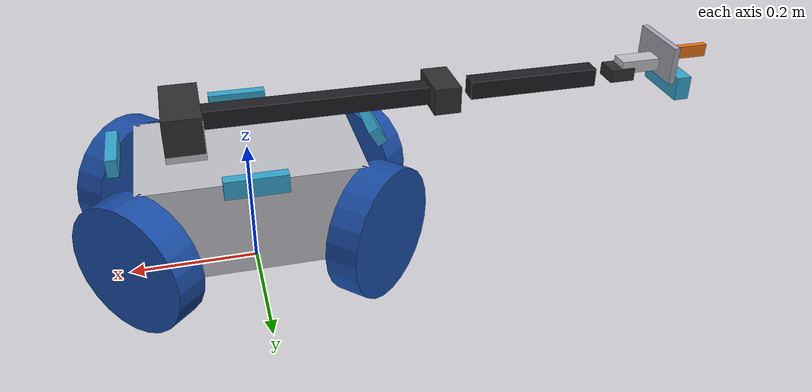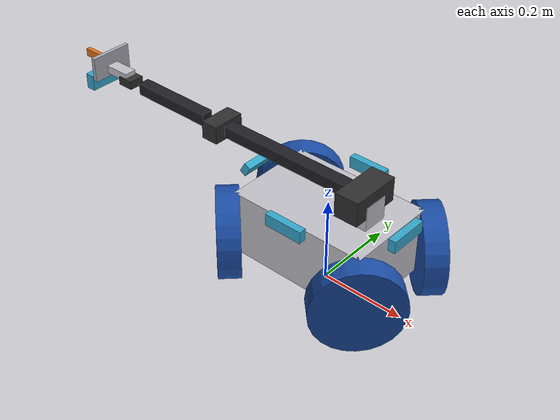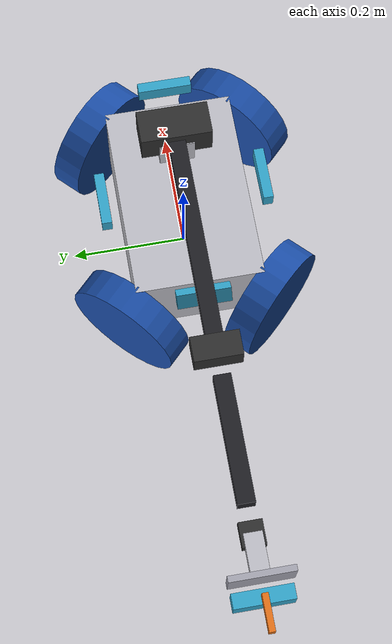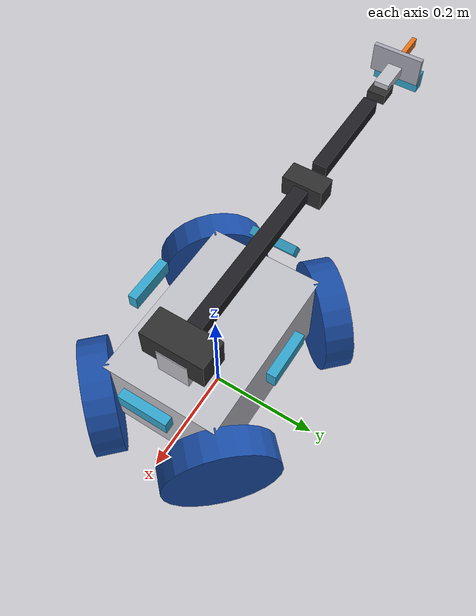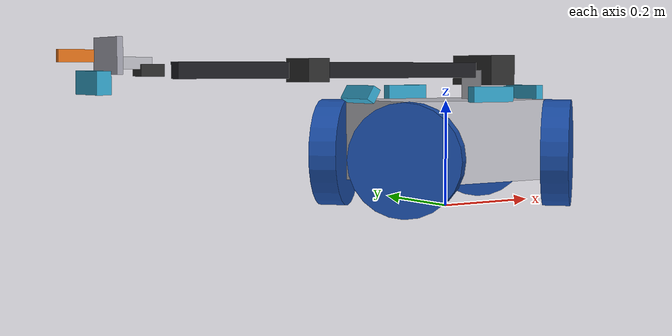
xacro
<?xml version="1.0"?>
<robot xmlns:xacro="http://www.ros.org/wiki/xacro" name="fortis">

  <xacro:arg name="enable_ros2_control" default="false"/>
  <xacro:arg name="use_mock_hardware"   default="false"/>
  <xacro:arg name="wheels"              default="fl,fr,rl,rr"/>
  <xacro:arg name="can_interface"       default="can0"/>

  <xacro:include filename="$(find fortis_description)/urdf/fortis_constants.xacro"/>
  <xacro:include filename="$(find fortis_description)/urdf/fortis_inertia.xacro"/>
  <xacro:include filename="$(find fortis_description)/urdf/fortis_materials.xacro"/>

  <xacro:include filename="$(find fortis_description)/urdf/fortis_chassis.urdf.xacro"/>
  <xacro:include filename="$(find fortis_description)/urdf/fortis_arm.urdf.xacro"/>

  <xacro:if value="$(arg enable_ros2_control)">
    <xacro:include filename="$(find fortis_description)/urdf/fortis_chassis.ros2_control.xacro"/>
    <xacro:fortis_chassis_ros2_control
        name="fortis_chassis_drive"
        can_interface="$(arg can_interface)"
        wheels="$(arg wheels)"
        use_mock_hardware="$(arg use_mock_hardware)"/>
  </xacro:if>

</robot>

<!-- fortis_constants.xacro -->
<robot xmlns:xacro="http://www.ros.org/wiki/xacro">

  <!--
    FORTIS dimensions, all in SI units (m, kg, rad).
    Source: ROS_Expanded_Chassis CAD export, treated as truth.
    Any value here is the single source of truth for the whole URDF.
  -->

  <!-- =================== CHASSIS =================== -->
  <!-- Skeleton box (the welded aluminum frame, excluding wheels) -->
  <xacro:property name="chassis_length"  value="0.332"/>  <!-- 13.082 in, X axis  -->
  <xacro:property name="chassis_width"   value="0.217"/>  <!-- 8.540  in, Y axis  -->
  <xacro:property name="chassis_height"  value="0.152"/>  <!-- 6.000  in, Z axis  -->
  <xacro:property name="chassis_mass"    value="4.0"/>    <!-- estimate; Robert to confirm post-build -->

  <!-- Belly clearance above ground -->
  <xacro:property name="belly_clearance" value="0.051"/>  <!-- 2.000 in -->

  <!-- =================== WHEELS (AndyMark 8" Dualie Omni am-0463) =================== -->
  <xacro:property name="wheel_radius"    value="0.1016"/> <!-- 4.000 in -->
  <xacro:property name="wheel_width"     value="0.051"/>  <!-- 2.000 in -->
  <xacro:property name="wheel_mass"      value="1.0"/>    <!-- ~1 kg per wheel -->

  <!-- Wheel center positions from chassis center (measured contact spans 2026-06-07) -->
  <xacro:property name="wheel_x_offset"  value="0.174625"/>  <!-- half of 13.75 in front-back span -->
  <xacro:property name="wheel_y_offset"  value="0.12065"/>  <!-- half of 9.5 in left-right span -->
  <xacro:property name="wheel_z"         value="${wheel_radius}"/>  <!-- wheel center at axle height -->

  <!-- X-config: each wheel rotated 45 deg about Z so its rolling axis is diagonal -->
  <xacro:property name="wheel_x_drive_yaw" value="0.7854"/>  <!-- 45 deg, sign per corner -->

  <!-- =================== ARM (4-DOF scorpion) =================== -->
  <!-- J1 mount: top of chassis, 3 in forward from rear edge per memory -->
  <!-- chassis center to J1 axis in X: half_length - 3 in = (0.332/2) - 0.0762 = 0.0898 -->
  <xacro:property name="j1_mount_x"      value="0.0898"/>
  <xacro:property name="j1_mount_y"      value="0.0"/>
  <xacro:property name="j1_mount_z"      value="${belly_clearance + chassis_height}"/>  <!-- top of chassis -->

  <xacro:property name="j1_to_j2_axis"   value="0.0559"/>    <!--  2.199 in, J2 shaft above chassis top -->
  <xacro:property name="arm_link2_axis"  value="0.393903"/>  <!-- 15.508 in, J2->J3 -->
  <xacro:property name="arm_link3_axis"  value="0.299237"/>  <!-- 11.781 in, J3->J4 -->
  <xacro:property name="arm_link4_axis"  value="0.0635"/>    <!--  2.500 in, J4 axis to gripper_base mount in X -->
  <xacro:property name="j4_to_gripper_z" value="0.02286"/>   <!--  0.900 in, gripper_base mount Z lift above link4 -->

  <xacro:property name="arm_link2_tube"  value="0.350"/>     <!-- shorter than axis to leave room for motors at each end -->
  <xacro:property name="arm_link3_tube"  value="0.208"/>     <!--  8.18 in CF tube -->
  <xacro:property name="arm_tube_side"   value="0.0287"/>    <!--  1.128 in, square CF tube outer -->

  <xacro:property name="arm_base_height" value="0.053"/>  <!-- CAD verified -->

  <xacro:property name="j2_motor_x"      value="0.057"/>  <!-- NEMA 23 cross-section -->
  <xacro:property name="j2_motor_y"      value="0.120"/>  <!-- NEMA 23 + 50:1 planetary, total length along axis -->
  <xacro:property name="j2_motor_z"      value="0.057"/>
  <xacro:property name="j3_motor_x"      value="0.042"/>  <!-- NEMA 17 cross-section -->
  <xacro:property name="j3_motor_y"      value="0.080"/>  <!-- NEMA 17 + Cricket gearbox, total length along axis -->
  <xacro:property name="j3_motor_z"      value="0.042"/>
  <xacro:property name="j4_motor_x"      value="0.040"/>  <!-- Hitec D845WP servo -->
  <xacro:property name="j4_motor_y"      value="0.038"/>
  <xacro:property name="j4_motor_z"      value="0.020"/>

  <xacro:property name="arm_link1_mass"  value="2.20"/>   <!-- NEMA 23 + 50:1 + bracket -->
  <xacro:property name="arm_link2_mass"  value="0.76"/>   <!-- CF tube 107g + NEMA 17+Cricket 650g -->
  <xacro:property name="arm_link3_mass"  value="0.20"/>   <!-- CF tube 86g + D845WP servo 60g + mount -->
  <xacro:property name="arm_link4_mass"  value="0.08"/>   <!-- short wrist bracket + camera bracket -->

  <!-- Joint limits, per locked hardware spec -->
  <xacro:property name="j1_lower"        value="-2.967"/> <!-- -170 deg, cable management range -->
  <xacro:property name="j1_upper"        value="2.967"/>  <!-- +170 deg -->
  <xacro:property name="j2_lower"        value="-1.571"/> <!-- -90  deg, gearbox hardstop -->
  <xacro:property name="j2_upper"        value="1.571"/>  <!-- +90  deg -->
  <xacro:property name="j3_lower"        value="-2.618"/> <!-- -150 deg, fold geometry -->
  <xacro:property name="j3_upper"        value="2.618"/>  <!-- +150 deg -->
  <xacro:property name="j4_lower"        value="-1.571"/> <!-- -90  deg, Hitec D845WP -->
  <xacro:property name="j4_upper"        value="1.571"/>  <!-- +90  deg -->

  <!-- Effort/velocity from motor+gearbox specs -->
  <xacro:property name="j1_effort"       value="15.0"/>   <!-- NEMA 17 + 25:1, conservative -->
  <xacro:property name="j2_effort"       value="40.0"/>   <!-- NEMA 23 + 50:1, conservative -->
  <xacro:property name="j3_effort"       value="15.0"/>   <!-- NEMA 17 + 25:1 -->
  <xacro:property name="j4_effort"       value="3.5"/>    <!-- D845WP stall torque -->
  <xacro:property name="j_velocity"      value="1.0"/>    <!-- 1 rad/s nominal -->

  <!-- =================== GRIPPER (ServoCity parallel jaw, rack-and-pinion) =================== -->
  <xacro:property name="gripper_base_mass"   value="0.15"/>
  <xacro:property name="gripper_base_x"      value="0.1041"/>  <!-- jaw-motion direction (lateral) -->
  <xacro:property name="gripper_base_y"      value="0.060"/>
  <xacro:property name="gripper_base_z"      value="0.010"/>   <!-- plate thickness in approach direction -->

  <xacro:property name="gripper_jaw_plane_z" value="0.030"/>   <!-- jaw plane height above gripper_base origin -->
  <xacro:property name="gripper_finger_x"    value="0.010"/>   <!-- thickness in jaw-motion direction -->
  <xacro:property name="gripper_finger_y"    value="0.020"/>
  <xacro:property name="gripper_finger_z"    value="0.058"/>   <!-- finger length in approach direction -->
  <xacro:property name="gripper_finger_mass" value="0.020"/>

  <xacro:property name="gripper_jaw_stroke"  value="0.027"/>
  <xacro:property name="gripper_tcp_z"       value="0.045"/>   <!-- TCP frame above gripper_base origin (approach direction) -->

  <!-- =================== CAMERAS =================== -->
  <!-- OAK-D Pro AF on arm end effector -->
  <xacro:property name="oak_pro_mass"      value="0.150"/>
  <xacro:property name="oak_pro_x"         value="0.097"/>
  <xacro:property name="oak_pro_y"         value="0.038"/>
  <xacro:property name="oak_pro_z"         value="0.024"/>

  <!-- OAK-D Lite (chassis cameras) -->
  <xacro:property name="oak_lite_mass"     value="0.090"/>
  <xacro:property name="oak_lite_x"        value="0.091"/>
  <xacro:property name="oak_lite_y"        value="0.028"/>
  <xacro:property name="oak_lite_z"        value="0.017"/>

  <xacro:property name="cam_edge_to_housing" value="0.01933"/>  <!-- 0.761 in -->
  <xacro:property name="cam_height_z"        value="0.21514"/>  <!-- 8.470 in off the ground -->
  <xacro:property name="cam_front_x"         value="${chassis_length/2 + cam_edge_to_housing + oak_lite_z/2}"/>
  <xacro:property name="cam_side_y"          value="${chassis_width/2  + cam_edge_to_housing + oak_lite_z/2}"/>

  <!-- Arm camera mount: on j4_link area, looking forward of EE -->
  <xacro:property name="arm_cam_x_offset"  value="0.030"/>
  <xacro:property name="arm_cam_z_offset"  value="-0.020"/>

</robot>

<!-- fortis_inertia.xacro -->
<robot xmlns:xacro="http://www.ros.org/wiki/xacro">

  <!-- Solid cuboid, mass m, full dimensions x y z (m) -->
  <xacro:macro name="box_inertia" params="m x y z xyz:='0 0 0' rpy:='0 0 0'">
    <inertial>
      <origin xyz="${xyz}" rpy="${rpy}"/>
      <mass value="${m}"/>
      <inertia
        ixx="${m * (y*y + z*z) / 12.0}"
        iyy="${m * (x*x + z*z) / 12.0}"
        izz="${m * (x*x + y*y) / 12.0}"
        ixy="0" ixz="0" iyz="0"/>
    </inertial>
  </xacro:macro>

  <!-- Solid cylinder, mass m, radius r, height h, axis = Z -->
  <xacro:macro name="cylinder_inertia" params="m r h xyz:='0 0 0' rpy:='0 0 0'">
    <inertial>
      <origin xyz="${xyz}" rpy="${rpy}"/>
      <mass value="${m}"/>
      <inertia
        ixx="${m * (3*r*r + h*h) / 12.0}"
        iyy="${m * (3*r*r + h*h) / 12.0}"
        izz="${m * r * r / 2.0}"
        ixy="0" ixz="0" iyz="0"/>
    </inertial>
  </xacro:macro>

  <!-- Solid sphere, mass m, radius r -->
  <xacro:macro name="sphere_inertia" params="m r xyz:='0 0 0' rpy:='0 0 0'">
    <inertial>
      <origin xyz="${xyz}" rpy="${rpy}"/>
      <mass value="${m}"/>
      <inertia
        ixx="${2 * m * r * r / 5.0}"
        iyy="${2 * m * r * r / 5.0}"
        izz="${2 * m * r * r / 5.0}"
        ixy="0" ixz="0" iyz="0"/>
    </inertial>
  </xacro:macro>

  <!-- Thin-walled hollow cylinder, mass m, outer radius r, height h, axis = Z -->
  <!-- Useful for CF tubes -->
  <xacro:macro name="tube_inertia" params="m r h xyz:='0 0 0' rpy:='0 0 0'">
    <inertial>
      <origin xyz="${xyz}" rpy="${rpy}"/>
      <mass value="${m}"/>
      <inertia
        ixx="${m * (6*r*r + h*h) / 12.0}"
        iyy="${m * (6*r*r + h*h) / 12.0}"
        izz="${m * r * r}"
        ixy="0" ixz="0" iyz="0"/>
    </inertial>
  </xacro:macro>

</robot>

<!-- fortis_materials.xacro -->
<robot xmlns:xacro="http://www.ros.org/wiki/xacro">

  <material name="fortis_aluminum">
    <color rgba="0.75 0.75 0.78 1.0"/>
  </material>

  <material name="fortis_carbon_fiber">
    <color rgba="0.12 0.12 0.14 1.0"/>
  </material>

  <material name="fortis_motor_black">
    <color rgba="0.18 0.18 0.18 1.0"/>
  </material>

  <material name="fortis_wheel_blue">
    <color rgba="0.10 0.30 0.65 1.0"/>
  </material>

  <material name="fortis_camera_cyan">
    <color rgba="0.20 0.65 0.80 1.0"/>
  </material>

  <material name="fortis_gripper_silver">
    <color rgba="0.65 0.65 0.70 1.0"/>
  </material>

  <material name="fortis_jaw_orange">
    <color rgba="0.90 0.45 0.10 1.0"/>
  </material>

</robot>

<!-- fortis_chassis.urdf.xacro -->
<robot xmlns:xacro="http://www.ros.org/wiki/xacro" name="fortis_chassis">

  <!-- =================== base_link (canonical ROS root) =================== -->
  <link name="base_link"/>

  <!-- =================== chassis body =================== -->
  <link name="chassis_body">
    <visual>
      <origin xyz="0 0 0" rpy="0 0 0"/>
      <geometry>
        <box size="${chassis_length} ${chassis_width} ${chassis_height}"/>
      </geometry>
      <material name="fortis_aluminum"/>
    </visual>
    <collision>
      <origin xyz="0 0 0" rpy="0 0 0"/>
      <geometry>
        <box size="${chassis_length} ${chassis_width} ${chassis_height}"/>
      </geometry>
    </collision>
    <xacro:box_inertia m="${chassis_mass}"
                       x="${chassis_length}"
                       y="${chassis_width}"
                       z="${chassis_height}"/>
  </link>

  <joint name="base_to_chassis_body" type="fixed">
    <parent link="base_link"/>
    <child  link="chassis_body"/>
    <origin xyz="0 0 ${belly_clearance + chassis_height/2}" rpy="0 0 0"/>
  </joint>

  <!-- =================== wheel macro =================== -->
  <xacro:macro name="omni_wheel" params="name x_pos y_pos yaw">

    <link name="${name}_wheel">
      <visual>
        <origin xyz="0 0 0" rpy="${pi/2} 0 0"/>
        <geometry>
          <cylinder radius="${wheel_radius}" length="${wheel_width}"/>
        </geometry>
        <material name="fortis_wheel_blue"/>
      </visual>
      <collision>
        <origin xyz="0 0 0" rpy="${pi/2} 0 0"/>
        <geometry>
          <cylinder radius="${wheel_radius}" length="${wheel_width}"/>
        </geometry>
      </collision>
      <xacro:cylinder_inertia m="${wheel_mass}"
                              r="${wheel_radius}"
                              h="${wheel_width}"
                              rpy="${pi/2} 0 0"/>
    </link>

    <joint name="${name}_wheel_joint" type="continuous">
      <parent link="base_link"/>
      <child  link="${name}_wheel"/>
      <origin xyz="${x_pos} ${y_pos} ${wheel_z}" rpy="0 0 ${yaw}"/>
      <axis xyz="0 1 0"/>
      <limit effort="20.0" velocity="20.0"/>
      <dynamics damping="0.01" friction="0.0"/>
    </joint>

  </xacro:macro>

  <xacro:omni_wheel name="fl"  x_pos=" ${wheel_x_offset}" y_pos=" ${wheel_y_offset}" yaw="${-wheel_x_drive_yaw}"/>
  <xacro:omni_wheel name="fr"  x_pos=" ${wheel_x_offset}" y_pos="-${wheel_y_offset}" yaw="${ wheel_x_drive_yaw}"/>
  <xacro:omni_wheel name="rl"  x_pos="-${wheel_x_offset}" y_pos=" ${wheel_y_offset}" yaw="${ wheel_x_drive_yaw}"/>
  <xacro:omni_wheel name="rr"  x_pos="-${wheel_x_offset}" y_pos="-${wheel_y_offset}" yaw="${-wheel_x_drive_yaw}"/>

  <!-- =================== chassis cameras (4x OAK-D Lite) =================== -->
  <!--
    Each chassis camera: link (camera body) + optical frame (ROS conv: Z forward, X right, Y down).
    The optical frame is what perception nodes publish images in.
  -->
  <xacro:macro name="oak_lite_camera" params="name x y z roll pitch yaw">

    <link name="${name}_camera_link">
      <visual>
        <origin xyz="0 0 0" rpy="${pi/2} 0 ${pi/2}"/>
        <geometry>
          <box size="${oak_lite_x} ${oak_lite_y} ${oak_lite_z}"/>
        </geometry>
        <material name="fortis_camera_cyan"/>
      </visual>
      <collision>
        <origin xyz="0 0 0" rpy="${pi/2} 0 ${pi/2}"/>
        <geometry>
          <box size="${oak_lite_x} ${oak_lite_y} ${oak_lite_z}"/>
        </geometry>
      </collision>
      <xacro:box_inertia m="${oak_lite_mass}"
                         x="${oak_lite_x}"
                         y="${oak_lite_y}"
                         z="${oak_lite_z}"
                         rpy="${pi/2} 0 ${pi/2}"/>
    </link>

    <joint name="${name}_camera_mount_joint" type="fixed">
      <parent link="base_link"/>
      <child  link="${name}_camera_link"/>
      <origin xyz="${x} ${y} ${z}" rpy="${roll} ${pitch} ${yaw}"/>
    </joint>

    <!-- Optical frame: Z forward, X right, Y down. -->
    <link name="${name}_camera_optical_frame"/>
    <joint name="${name}_camera_optical_joint" type="fixed">
      <parent link="${name}_camera_link"/>
      <child  link="${name}_camera_optical_frame"/>
      <origin xyz="0 0 0" rpy="${-pi/2} 0 ${-pi/2}"/>
    </joint>

  </xacro:macro>

  <xacro:oak_lite_camera name="front"
                         x="-${cam_front_x}" y="0" z="${cam_height_z}"
                         roll="0" pitch="-0.524" yaw="${pi}"/>       <!-- 30 deg up -->
  <xacro:oak_lite_camera name="rear"
                         x="${cam_front_x}" y="0" z="${cam_height_z}"
                         roll="0" pitch="0" yaw="0"/>
  <xacro:oak_lite_camera name="left"
                         x="0" y="-${cam_side_y}" z="${cam_height_z}"
                         roll="0" pitch="0" yaw="${-pi/2}"/>
  <xacro:oak_lite_camera name="right"
                         x="0" y="${cam_side_y}" z="${cam_height_z}"
                         roll="0" pitch="0" yaw="${pi/2}"/>

  <!-- =================== arm mounting plate (where arm attaches) =================== -->
  <link name="arm_mount"/>
  <joint name="chassis_to_arm_mount" type="fixed">
    <parent link="base_link"/>
    <child  link="arm_mount"/>
    <origin xyz="${j1_mount_x} ${j1_mount_y} ${j1_mount_z}" rpy="0 0 ${pi}"/>
  </joint>

</robot>

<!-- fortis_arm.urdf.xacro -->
<robot xmlns:xacro="http://www.ros.org/wiki/xacro" name="fortis_arm">

  <!-- =================== arm_base (J1 motor body) =================== -->
  <link name="arm_base">
    <visual>
      <origin xyz="0 0 ${-arm_base_height/2}" rpy="0 0 0"/>
      <geometry>
        <cylinder radius="0.025" length="${arm_base_height}"/>
      </geometry>
      <material name="fortis_motor_black"/>
    </visual>
    <collision>
      <origin xyz="0 0 ${-arm_base_height/2}" rpy="0 0 0"/>
      <geometry>
        <cylinder radius="0.025" length="${arm_base_height}"/>
      </geometry>
    </collision>
    <xacro:cylinder_inertia m="0.40"
                            r="0.025"
                            h="${arm_base_height}"
                            xyz="0 0 ${-arm_base_height/2}"/>
  </link>

  <joint name="arm_mount_to_arm_base" type="fixed">
    <parent link="arm_mount"/>
    <child  link="arm_base"/>
    <origin xyz="0 0 0" rpy="0 0 0"/>
  </joint>

  <!-- =================== J1: yaw at base (revolute about Z) =================== -->
  <!--
    link1 represents the J2 motor mount bracket that rotates with J1. Its
    origin sits at the J1 axis (chassis top); J2 axis sits j1_to_j2_axis
    (91 mm) above J1 axis.
  -->
  <link name="link1">
    <visual>
      <origin xyz="0 0 ${j1_to_j2_axis/2}" rpy="0 0 0"/>
      <geometry>
        <box size="0.060 0.060 ${j1_to_j2_axis}"/>
      </geometry>
      <material name="fortis_aluminum"/>
    </visual>
    <!-- J2 motor body (NEMA 23 + 50:1 planetary) at top of L1, axis along Y. -->
    <visual>
      <origin xyz="0 0 ${j1_to_j2_axis}" rpy="0 0 0"/>
      <geometry>
        <box size="${j2_motor_x} ${j2_motor_y} ${j2_motor_z}"/>
      </geometry>
      <material name="fortis_motor_black"/>
    </visual>
    <collision>
      <origin xyz="0 0 ${j1_to_j2_axis/2}" rpy="0 0 0"/>
      <geometry>
        <box size="0.060 0.060 ${j1_to_j2_axis}"/>
      </geometry>
    </collision>
    <!-- CoM biased toward J2 end since the NEMA 23 + planetary sits there. -->
    <xacro:box_inertia m="${arm_link1_mass}"
                       x="0.060"
                       y="0.060"
                       z="${j1_to_j2_axis}"
                       xyz="0 0 ${j1_to_j2_axis*0.85}"/>
  </link>

  <joint name="joint_j1" type="revolute">
    <parent link="arm_base"/>
    <child  link="link1"/>
    <origin xyz="0 0 0" rpy="0 0 0"/>
    <axis xyz="0 0 1"/>
    <limit lower="${j1_lower}" upper="${j1_upper}"
           effort="${j1_effort}" velocity="${j_velocity}"/>
    <dynamics damping="0.5" friction="0.1"/>
  </joint>

  <!-- =================== J2: shoulder pitch (revolute about Y) =================== -->
  <link name="link2">
    <!-- CF tube along +X. -->
    <visual>
      <origin xyz="${arm_link2_axis/2} 0 0" rpy="0 0 0"/>
      <geometry>
        <box size="${arm_link2_tube} ${arm_tube_side} ${arm_tube_side}"/>
      </geometry>
      <material name="fortis_carbon_fiber"/>
    </visual>
    <!-- J3 motor body (NEMA 17 + Cricket) at far end of L2, axis along Y. -->
    <visual>
      <origin xyz="${arm_link2_axis} 0 0" rpy="0 0 0"/>
      <geometry>
        <box size="${j3_motor_x} ${j3_motor_y} ${j3_motor_z}"/>
      </geometry>
      <material name="fortis_motor_black"/>
    </visual>
    <collision>
      <origin xyz="${arm_link2_axis/2} 0 0" rpy="0 0 0"/>
      <geometry>
        <box size="${arm_link2_tube} ${arm_tube_side} ${arm_tube_side}"/>
      </geometry>
    </collision>
    <!-- CoM biased toward J3 end where the NEMA 17 + Cricket sit. -->
    <xacro:box_inertia m="${arm_link2_mass}"
                       x="${arm_link2_axis}"
                       y="${arm_tube_side}"
                       z="${arm_tube_side}"
                       xyz="${arm_link2_axis*0.75} 0 0"/>
  </link>

  <joint name="joint_j2" type="revolute">
    <parent link="link1"/>
    <child  link="link2"/>
    <origin xyz="0 0 ${j1_to_j2_axis}" rpy="0 0 0"/>
    <axis xyz="0 1 0"/>
    <limit lower="${j2_lower}" upper="${j2_upper}"
           effort="${j2_effort}" velocity="${j_velocity}"/>
    <dynamics damping="0.8" friction="0.2"/>
  </joint>

  <!-- =================== J3: elbow pitch (revolute about Y) =================== -->
  <link name="link3">
    <visual>
      <origin xyz="${arm_link3_axis/2} 0 0" rpy="0 0 0"/>
      <geometry>
        <box size="${arm_link3_tube} ${arm_tube_side} ${arm_tube_side}"/>
      </geometry>
      <material name="fortis_carbon_fiber"/>
    </visual>
    <!-- J4 servo (Hitec D845WP) at far end of L3, axis along Y. -->
    <visual>
      <origin xyz="${arm_link3_axis} 0 0" rpy="0 0 0"/>
      <geometry>
        <box size="${j4_motor_x} ${j4_motor_y} ${j4_motor_z}"/>
      </geometry>
      <material name="fortis_motor_black"/>
    </visual>
    <collision>
      <origin xyz="${arm_link3_axis/2} 0 0" rpy="0 0 0"/>
      <geometry>
        <box size="${arm_link3_tube} ${arm_tube_side} ${arm_tube_side}"/>
      </geometry>
    </collision>
    <xacro:box_inertia m="${arm_link3_mass}"
                       x="${arm_link3_axis}"
                       y="${arm_tube_side}"
                       z="${arm_tube_side}"
                       xyz="${arm_link3_axis*0.70} 0 0"/>
  </link>

  <joint name="joint_j3" type="revolute">
    <parent link="link2"/>
    <child  link="link3"/>
    <origin xyz="${arm_link2_axis} 0 0" rpy="0 0 0"/>
    <axis xyz="0 1 0"/>
    <limit lower="${j3_lower}" upper="${j3_upper}"
           effort="${j3_effort}" velocity="${j_velocity}"/>
    <dynamics damping="0.5" friction="0.1"/>
  </joint>

  <!-- =================== J4: wrist pitch (revolute about Y) =================== -->
  <!--
    link4 is the short wrist bracket between J4 axis and the gripper mount face.
    Mount face sits arm_link4_axis (2.5 in) forward and j4_to_gripper_z (0.9 in)
    above the J4 axis.
  -->
  <link name="link4">
    <visual>
      <origin xyz="${arm_link4_axis/2} 0 ${j4_to_gripper_z/2}" rpy="0 0 0"/>
      <geometry>
        <box size="${arm_link4_axis} 0.030 0.020"/>
      </geometry>
      <material name="fortis_aluminum"/>
    </visual>
    <collision>
      <origin xyz="${arm_link4_axis/2} 0 ${j4_to_gripper_z/2}" rpy="0 0 0"/>
      <geometry>
        <box size="${arm_link4_axis} 0.030 0.020"/>
      </geometry>
    </collision>
    <xacro:box_inertia m="${arm_link4_mass}"
                       x="${arm_link4_axis}"
                       y="0.030"
                       z="0.020"
                       xyz="${arm_link4_axis/2} 0 ${j4_to_gripper_z/2}"/>
  </link>

  <joint name="joint_j4" type="revolute">
    <parent link="link3"/>
    <child  link="link4"/>
    <origin xyz="${arm_link3_axis} 0 0" rpy="0 0 0"/>
    <axis xyz="0 1 0"/>
    <limit lower="${j4_lower}" upper="${j4_upper}"
           effort="${j4_effort}" velocity="${j_velocity}"/>
    <dynamics damping="0.3" friction="0.05"/>
  </joint>

  <!-- =================== gripper (ServoCity parallel jaw, rack-and-pinion) =================== -->
  <link name="gripper_base">
    <visual>
      <origin xyz="0 0 ${gripper_base_z/2}" rpy="0 0 0"/>
      <geometry>
        <box size="${gripper_base_x} ${gripper_base_y} ${gripper_base_z}"/>
      </geometry>
      <material name="fortis_gripper_silver"/>
    </visual>
    <collision>
      <origin xyz="0 0 ${gripper_base_z/2}" rpy="0 0 0"/>
      <geometry>
        <box size="${gripper_base_x} ${gripper_base_y} ${gripper_base_z}"/>
      </geometry>
    </collision>
    <xacro:box_inertia m="${gripper_base_mass}"
                       x="${gripper_base_x}"
                       y="${gripper_base_y}"
                       z="${gripper_base_z}"
                       xyz="0 0 ${gripper_base_z/2}"/>
  </link>

  <joint name="link4_to_gripper_base" type="fixed">
    <parent link="link4"/>
    <child  link="gripper_base"/>
    <origin xyz="${arm_link4_axis} 0 ${j4_to_gripper_z}"
            rpy="${pi/2} 0 ${pi/2}"/>
  </joint>

  <!-- Left jaw: actuated. Travel 0 (closed) to gripper_jaw_stroke (open). -->
  <link name="gripper_left_finger">
    <visual>
      <origin xyz="0 0 ${gripper_finger_z/2}" rpy="0 0 0"/>
      <geometry>
        <box size="${gripper_finger_x} ${gripper_finger_y} ${gripper_finger_z}"/>
      </geometry>
      <material name="fortis_jaw_orange"/>
    </visual>
    <collision>
      <origin xyz="0 0 ${gripper_finger_z/2}" rpy="0 0 0"/>
      <geometry>
        <box size="${gripper_finger_x} ${gripper_finger_y} ${gripper_finger_z}"/>
      </geometry>
    </collision>
    <xacro:box_inertia m="${gripper_finger_mass}"
                       x="${gripper_finger_x}"
                       y="${gripper_finger_y}"
                       z="${gripper_finger_z}"
                       xyz="0 0 ${gripper_finger_z/2}"/>
  </link>

  <joint name="gripper_left_joint" type="prismatic">
    <parent link="gripper_base"/>
    <child  link="gripper_left_finger"/>
    <origin xyz="0 0 ${gripper_jaw_plane_z}" rpy="0 0 0"/>
    <axis xyz="1 0 0"/>
    <limit lower="0.0" upper="${gripper_jaw_stroke}"
           effort="10.0" velocity="0.05"/>
    <dynamics damping="2.0" friction="0.5"/>
  </joint>

  <!-- Right jaw: mirrored mimic. multiplier=-1 enforces symmetric motion in URDF. -->
  <link name="gripper_right_finger">
    <visual>
      <origin xyz="0 0 ${gripper_finger_z/2}" rpy="0 0 0"/>
      <geometry>
        <box size="${gripper_finger_x} ${gripper_finger_y} ${gripper_finger_z}"/>
      </geometry>
      <material name="fortis_jaw_orange"/>
    </visual>
    <collision>
      <origin xyz="0 0 ${gripper_finger_z/2}" rpy="0 0 0"/>
      <geometry>
        <box size="${gripper_finger_x} ${gripper_finger_y} ${gripper_finger_z}"/>
      </geometry>
    </collision>
    <xacro:box_inertia m="${gripper_finger_mass}"
                       x="${gripper_finger_x}"
                       y="${gripper_finger_y}"
                       z="${gripper_finger_z}"
                       xyz="0 0 ${gripper_finger_z/2}"/>
  </link>

  <joint name="gripper_right_joint" type="prismatic">
    <parent link="gripper_base"/>
    <child  link="gripper_right_finger"/>
    <origin xyz="0 0 ${gripper_jaw_plane_z}" rpy="0 0 0"/>
    <axis xyz="1 0 0"/>
    <limit lower="-${gripper_jaw_stroke}" upper="0.0"
           effort="10.0" velocity="0.05"/>
    <mimic joint="gripper_left_joint" multiplier="-1.0" offset="0.0"/>
    <dynamics damping="2.0" friction="0.5"/>
  </joint>

  <!--
    TCP (tool center point) for MoveIt grasp planning. Placed along the gripper
    +Z (approach) axis at gripper_tcp_z, roughly at the finger-tip midpoint when
    closed.
  -->
  <link name="gripper_tcp"/>
  <joint name="gripper_tcp_joint" type="fixed">
    <parent link="gripper_base"/>
    <child  link="gripper_tcp"/>
    <origin xyz="0 0 ${gripper_tcp_z}" rpy="0 0 0"/>
  </joint>

  <!-- =================== arm camera (OAK-D Pro AF) =================== -->
  <link name="arm_camera_link">
    <visual>
      <origin xyz="0 0 0" rpy="${pi/2} 0 ${pi/2}"/>
      <geometry>
        <box size="${oak_pro_x} ${oak_pro_y} ${oak_pro_z}"/>
      </geometry>
      <material name="fortis_camera_cyan"/>
    </visual>
    <collision>
      <origin xyz="0 0 0" rpy="${pi/2} 0 ${pi/2}"/>
      <geometry>
        <box size="${oak_pro_x} ${oak_pro_y} ${oak_pro_z}"/>
      </geometry>
    </collision>
    <xacro:box_inertia m="${oak_pro_mass}"
                       x="${oak_pro_x}"
                       y="${oak_pro_y}"
                       z="${oak_pro_z}"
                       rpy="${pi/2} 0 ${pi/2}"/>
  </link>

  <!-- Mount the camera under the wrist, forward of the gripper base mount. -->
  <joint name="link4_to_arm_camera" type="fixed">
    <parent link="link4"/>
    <child  link="arm_camera_link"/>
    <origin xyz="${arm_link4_axis + arm_cam_x_offset} 0 ${arm_cam_z_offset}" rpy="0 0 0"/>
  </joint>

  <link name="arm_camera_optical_frame"/>
  <joint name="arm_camera_optical_joint" type="fixed">
    <parent link="arm_camera_link"/>
    <child  link="arm_camera_optical_frame"/>
    <origin xyz="0 0 0" rpy="${-pi/2} 0 ${-pi/2}"/>
  </joint>

</robot>
